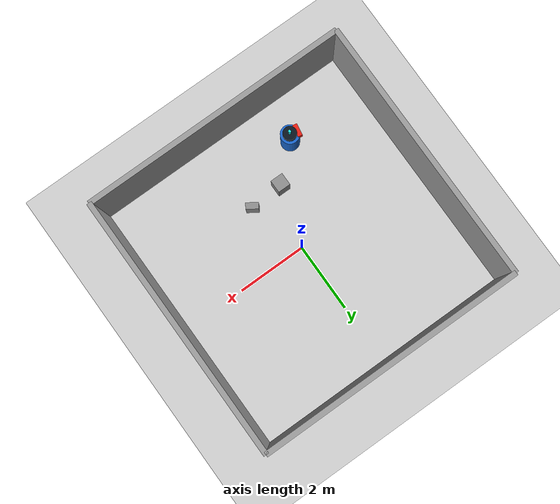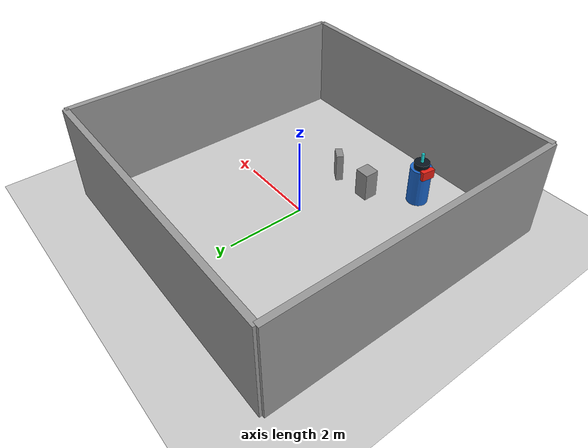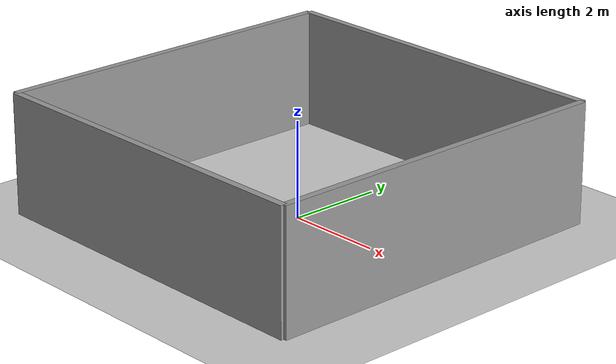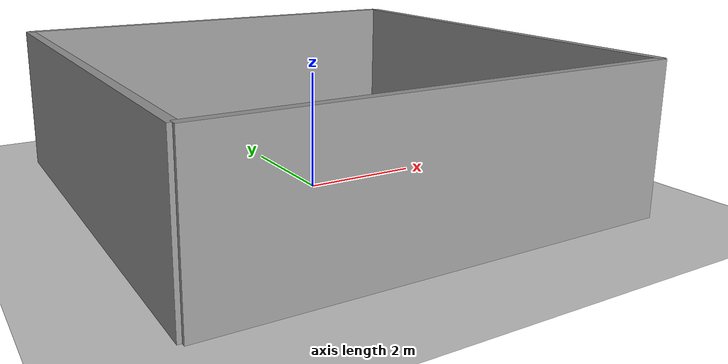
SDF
<sdf version="1.7">
 <world name="default">
  <plugin name="socnav_plugin" filename="libSocNavPlugin.so">
   <robot_name>robot</robot_name>
   <trajectory_file>/home/hunav_gz_classic_ws/SocNav3_trajectories/src6/000003896.json</trajectory_file>
   <human_slots>3</human_slots>
   <goal_angle_mesh>
    <angle_threshold>0.896297488828</angle_threshold>
    <uri>/home/hunav_gz_classic_ws/src/socnav_gazebo_reproducer/meshes/000003896_goal_angle_00.stl</uri>
   </goal_angle_mesh>
  </plugin>
  <light name="sun" type="directional">
   <pose>0 0 10 0 -0 0</pose>
   <diffuse>0.8 0.8 0.8 1</diffuse>
   <specular>0.2 0.2 0.2 1</specular>
   <attenuation>
    <range>1000</range>
    <constant>0.9</constant>
    <linear>0.01</linear>
    <quadratic>0.001</quadratic>
   </attenuation>
   <direction>-0.5 0.1 -0.9</direction>
   <spot><inner_angle>0</inner_angle><outer_angle>0</outer_angle><falloff>0</falloff></spot>
  </light>
  <model name="ground_plane">
   <static>1</static>
   <link name="link">
    <collision name="collision">
     <geometry><plane><normal>0 0 1</normal><size>100 100</size></plane></geometry>
     <surface><friction><ode><mu>100</mu><mu2>50</mu2></ode></friction></surface>
    </collision>
    <visual name="visual">
     <cast_shadows>0</cast_shadows>
     <geometry><plane><normal>0 0 1</normal><size>100 100</size></plane></geometry>
     <material>
      <script><uri>file://media/materials/scripts/kitchen.material</uri><name>Kitchen/CounterTop_H</name></script>
     </material>
    </visual>
   </link>
  </model>
  <gravity>0 0 -9.8</gravity>
  <magnetic_field>6e-06 2.3e-05 -4.2e-05</magnetic_field>
  <atmosphere type="adiabatic"/>
  <physics type="ode">
   <max_step_size>0.001</max_step_size>
   <real_time_factor>1</real_time_factor>
   <real_time_update_rate>1000</real_time_update_rate>
  </physics>
  <scene><ambient>0.4 0.4 0.4 1</ambient><background>0.7 0.7 0.7 1</background><shadows>1</shadows></scene>
  <audio><device>default</device></audio>
  <spherical_coordinates>
   <surface_model>EARTH_WGS84</surface_model>
   <latitude_deg>0</latitude_deg>
   <longitude_deg>0</longitude_deg>
   <elevation>0</elevation>
   <heading_deg>0</heading_deg>
  </spherical_coordinates>
  <model name="robot">
   <pose>-1.449264391005186 -2.564931836555048 0.5 0 0 2.983205108815018</pose>
   <link name="link">
    <collision name="collision">
     <geometry><cylinder><radius>0.26617768231037603</radius><length>1.0</length></cylinder></geometry>
    </collision>
    <visual name="visual">
     <geometry><cylinder><radius>0.26617768231037603</radius><length>1.0</length></cylinder></geometry>
     <material><ambient>0.1 0.4 0.8 1</ambient><diffuse>0.1 0.4 0.8 1</diffuse></material>
    </visual>
    <visual name="robot_top">
     <pose>0 0 0.58 0 0 0</pose>
     <geometry><cylinder><radius>0.19164793126347074</radius><length>0.16</length></cylinder></geometry>
     <material><ambient>0.04 0.08 0.12 1</ambient><diffuse>0.04 0.08 0.12 1</diffuse></material>
    </visual>
    <visual name="robot_front">
     <pose>0.22358925314071584 0 0.44 0 0 0</pose>
     <geometry><box><size>0.1277652875089805 0.3407074333572813 0.24</size></box></geometry>
     <material><ambient>0.9 0.12 0.08 1</ambient><diffuse>0.9 0.12 0.08 1</diffuse></material>
    </visual>
    <visual name="robot_sensor">
     <pose>0 0 0.78 0 0 0</pose>
     <geometry><cylinder><radius>0.037264875523452645</radius><length>0.24</length></cylinder></geometry>
     <material><ambient>0.1 0.9 0.9 1</ambient><diffuse>0.1 0.9 0.9 1</diffuse></material>
    </visual>
   </link>
  </model>
  <model name="static_object_0">
   <static>true</static>
   <pose>0.46311420717497687 -1.6310402675136269 0.375 0 0 -0.5806804720549081</pose>
   <link name="link">
    <collision name="collision"><geometry><box><size>0.35 0.18 0.75</size></box></geometry></collision>
    <visual name="visual">
     <geometry><box><size>0.35 0.18 0.75</size></box></geometry>
     <material><ambient>0.55 0.55 0.55 1</ambient><diffuse>0.55 0.55 0.55 1</diffuse></material>
    </visual>
   </link>
  </model>
  <model name="static_object_3">
   <static>true</static>
   <pose>-0.5084796438631893 -1.6926923098730866 0.375 0 0 0</pose>
   <link name="link">
    <collision name="collision">
     <geometry><box><size>0.368554144047822 0.368554144047822 0.75</size></box></geometry>
    </collision>
    <visual name="visual">
     <geometry><box><size>0.368554144047822 0.368554144047822 0.75</size></box></geometry>
     <material><ambient>0.55 0.55 0.55 1</ambient><diffuse>0.55 0.55 0.55 1</diffuse></material>
    </visual>
   </link>
  </model>
  <model name="simple_world_test">
   <link name="Wall_0">
    <collision name="Wall_0_Collision">
     <geometry><box><size>7.635602380713287 0.15 2.5</size></box></geometry>
     <pose>0 0 1.25 0 -0 0</pose>
    </collision>
    <visual name="Wall_0_Visual">
     <pose>0 0 1.25 0 -0 0</pose>
     <geometry><box><size>7.635602380713287 0.15 2.5</size></box></geometry>
     <material>
      <script><uri>file://media/materials/scripts/gazebo.material</uri><name>Gazebo/Grey</name></script>
      <ambient>1 1 1 1</ambient>
     </material>
     <meta><layer>0</layer></meta>
    </visual>
    <pose>3.8078011903566438 0.0 0 0 -0 -1.5707963267948966</pose>
   </link>
   <link name="Wall_1">
    <collision name="Wall_1_Collision">
     <geometry><box><size>7.635602380713287 0.15 2.5</size></box></geometry>
     <pose>0 0 1.25 0 -0 0</pose>
    </collision>
    <visual name="Wall_1_Visual">
     <pose>0 0 1.25 0 -0 0</pose>
     <geometry><box><size>7.635602380713287 0.15 2.5</size></box></geometry>
     <material>
      <script><uri>file://media/materials/scripts/gazebo.material</uri><name>Gazebo/Grey</name></script>
      <ambient>1 1 1 1</ambient>
     </material>
     <meta><layer>0</layer></meta>
    </visual>
    <pose>0.0 -3.8078011903566438 0 0 -0 -3.141592653589793</pose>
   </link>
   <link name="Wall_2">
    <collision name="Wall_2_Collision">
     <geometry><box><size>7.635602380713287 0.15 2.5</size></box></geometry>
     <pose>0 0 1.25 0 -0 0</pose>
    </collision>
    <visual name="Wall_2_Visual">
     <pose>0 0 1.25 0 -0 0</pose>
     <geometry><box><size>7.635602380713287 0.15 2.5</size></box></geometry>
     <material>
      <script><uri>file://media/materials/scripts/gazebo.material</uri><name>Gazebo/Grey</name></script>
      <ambient>1 1 1 1</ambient>
     </material>
     <meta><layer>0</layer></meta>
    </visual>
    <pose>-3.8078011903566438 0.0 0 0 -0 1.5707963267948966</pose>
   </link>
   <link name="Wall_3">
    <collision name="Wall_3_Collision">
     <geometry><box><size>7.635602380713287 0.15 2.5</size></box></geometry>
     <pose>0 0 1.25 0 -0 0</pose>
    </collision>
    <visual name="Wall_3_Visual">
     <pose>0 0 1.25 0 -0 0</pose>
     <geometry><box><size>7.635602380713287 0.15 2.5</size></box></geometry>
     <material>
      <script><uri>file://media/materials/scripts/gazebo.material</uri><name>Gazebo/Grey</name></script>
      <ambient>1 1 1 1</ambient>
     </material>
     <meta><layer>0</layer></meta>
    </visual>
    <pose>0.0 3.8078011903566438 0 0 -0 0.0</pose>
   </link>
   <static>1</static>
  </model>
 </world>
</sdf>
